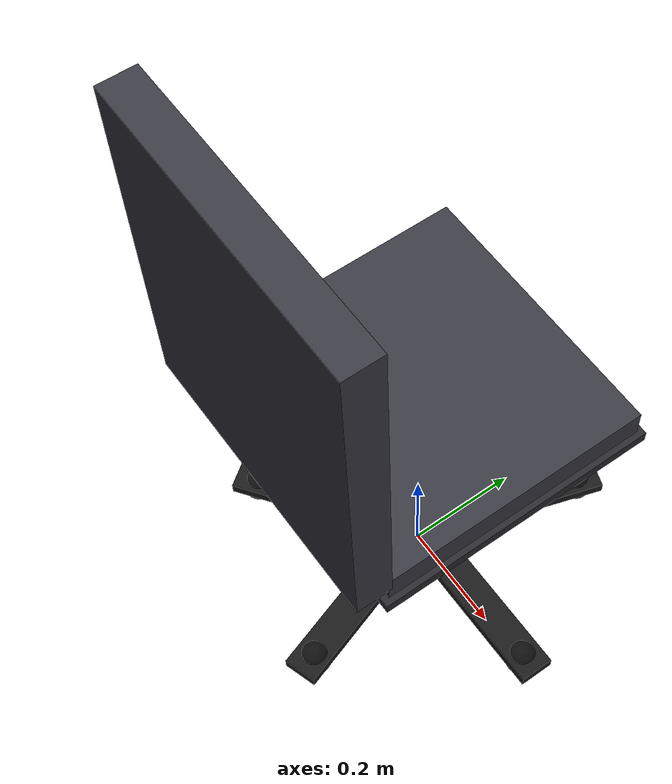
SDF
<?xml version="1.0" ?>
<sdf version="1.6">
  <model name="office_chair_5wheels_no_arms">
    <static>false</static>

    <link name="chair">
      <gravity>true</gravity>
      <self_collide>false</self_collide>
      <kinematic>false</kinematic>

      <!-- caster collisions (low friction) -->
      <collision name="caster_col_0">
        <pose>0.30 0.0 0.03 0 0 0</pose>
        <geometry><sphere><radius>0.03</radius></sphere></geometry>
        <surface><friction><ode><mu>0.05</mu><mu2>0.05</mu2></ode></friction></surface>
      </collision>
      <collision name="caster_col_72">
        <pose>0.0927 0.2853 0.03 0 0 0</pose>
        <geometry><sphere><radius>0.03</radius></sphere></geometry>
        <surface><friction><ode><mu>0.05</mu><mu2>0.05</mu2></ode></friction></surface>
      </collision>
      <collision name="caster_col_144">
        <pose>-0.2427 0.1763 0.03 0 0 0</pose>
        <geometry><sphere><radius>0.03</radius></sphere></geometry>
        <surface><friction><ode><mu>0.05</mu><mu2>0.05</mu2></ode></friction></surface>
      </collision>
      <collision name="caster_col_216">
        <pose>-0.2427 -0.1763 0.03 0 0 0</pose>
        <geometry><sphere><radius>0.03</radius></sphere></geometry>
        <surface><friction><ode><mu>0.05</mu><mu2>0.05</mu2></ode></friction></surface>
      </collision>
      <collision name="caster_col_288">
        <pose>0.0927 -0.2853 0.03 0 0 0</pose>
        <geometry><sphere><radius>0.03</radius></sphere></geometry>
        <surface><friction><ode><mu>0.05</mu><mu2>0.05</mu2></ode></friction></surface>
      </collision>

      <collision name="base_hub_col">
        <pose>0 0 0.06 0 0 0</pose>
        <geometry><cylinder><radius>0.07</radius><length>0.06</length></cylinder></geometry>
        <surface><friction><ode><mu>0.4</mu><mu2>0.4</mu2></ode></friction></surface>
      </collision>

      <collision name="post_col">
        <pose>0 0 0.27 0 0 0</pose>
        <geometry><cylinder><radius>0.03</radius><length>0.36</length></cylinder></geometry>
      </collision>

      <collision name="seat_col">
        <pose>0 0 0.49 0 0 0</pose>
        <geometry><box><size>0.50 0.48 0.08</size></box></geometry>
      </collision>

      <collision name="back_col">
        <pose>0 -0.26 0.83 0 0 0</pose>
        <geometry><box><size>0.50 0.06 0.60</size></box></geometry>
      </collision>

      <!-- ===== VISUALS (no side cylinders) ===== -->

      <!-- star legs -->
      <visual name="leg_0_vis">
        <pose>0.18 0.0 0.04 0 0 0</pose>
        <geometry><box><size>0.32 0.06 0.02</size></box></geometry>
        <material><ambient>0.06 0.06 0.06 1</ambient><diffuse>0.10 0.10 0.10 1</diffuse></material>
      </visual>
      <visual name="leg_72_vis">
        <pose>0.0558 0.1716 0.04 0 0 1.256637</pose>
        <geometry><box><size>0.32 0.06 0.02</size></box></geometry>
        <material><ambient>0.06 0.06 0.06 1</ambient><diffuse>0.10 0.10 0.10 1</diffuse></material>
      </visual>
      <visual name="leg_144_vis">
        <pose>-0.146 0.106 0.04 0 0 2.513274</pose>
        <geometry><box><size>0.32 0.06 0.02</size></box></geometry>
        <material><ambient>0.06 0.06 0.06 1</ambient><diffuse>0.10 0.10 0.10 1</diffuse></material>
      </visual>
      <visual name="leg_216_vis">
        <pose>-0.146 -0.106 0.04 0 0 3.769911</pose>
        <geometry><box><size>0.32 0.06 0.02</size></box></geometry>
        <material><ambient>0.06 0.06 0.06 1</ambient><diffuse>0.10 0.10 0.10 1</diffuse></material>
      </visual>
      <visual name="leg_288_vis">
        <pose>0.0558 -0.1716 0.04 0 0 5.026548</pose>
        <geometry><box><size>0.32 0.06 0.02</size></box></geometry>
        <material><ambient>0.06 0.06 0.06 1</ambient><diffuse>0.10 0.10 0.10 1</diffuse></material>
      </visual>

      <visual name="hub_cover_vis">
        <pose>0 0 0.06 0 0 0</pose>
        <geometry><cylinder><radius>0.08</radius><length>0.03</length></cylinder></geometry>
        <material><ambient>0.07 0.07 0.07 1</ambient><diffuse>0.12 0.12 0.12 1</diffuse></material>
      </visual>

      <!-- caster visuals -->
      <visual name="caster_0_vis">
        <pose>0.30 0.0 0.03 0 0 0</pose>
        <geometry><sphere><radius>0.03</radius></sphere></geometry>
        <material><ambient>0.03 0.03 0.03 1</ambient><diffuse>0.06 0.06 0.06 1</diffuse></material>
      </visual>
      <visual name="caster_72_vis">
        <pose>0.0927 0.2853 0.03 0 0 0</pose>
        <geometry><sphere><radius>0.03</radius></sphere></geometry>
        <material><ambient>0.03 0.03 0.03 1</ambient><diffuse>0.06 0.06 0.06 1</diffuse></material>
      </visual>
      <visual name="caster_144_vis">
        <pose>-0.2427 0.1763 0.03 0 0 0</pose>
        <geometry><sphere><radius>0.03</radius></sphere></geometry>
        <material><ambient>0.03 0.03 0.03 1</ambient><diffuse>0.06 0.06 0.06 1</diffuse></material>
      </visual>
      <visual name="caster_216_vis">
        <pose>-0.2427 -0.1763 0.03 0 0 0</pose>
        <geometry><sphere><radius>0.03</radius></sphere></geometry>
        <material><ambient>0.03 0.03 0.03 1</ambient><diffuse>0.06 0.06 0.06 1</diffuse></material>
      </visual>
      <visual name="caster_288_vis">
        <pose>0.0927 -0.2853 0.03 0 0 0</pose>
        <geometry><sphere><radius>0.03</radius></sphere></geometry>
        <material><ambient>0.03 0.03 0.03 1</ambient><diffuse>0.06 0.06 0.06 1</diffuse></material>
      </visual>

      <!-- post and seat -->
      <visual name="post_vis">
        <pose>0 0 0.27 0 0 0</pose>
        <geometry><cylinder><radius>0.03</radius><length>0.36</length></cylinder></geometry>
        <material><ambient>0.5 0.5 0.55 1</ambient><diffuse>0.75 0.75 0.80 1</diffuse><specular>0.8 0.8 0.9 1</specular></material>
      </visual>
      <visual name="seat_plate_vis">
        <pose>0 0 0.45 0 0 0</pose>
        <geometry><cylinder><radius>0.22</radius><length>0.015</length></cylinder></geometry>
        <material><ambient>0.07 0.07 0.07 1</ambient><diffuse>0.12 0.12 0.12 1</diffuse></material>
      </visual>
      <visual name="seat_base_vis">
        <pose>0 0 0.47 0 0 0</pose>
        <geometry><box><size>0.50 0.48 0.02</size></box></geometry>
        <material><ambient>0.08 0.08 0.09 1</ambient><diffuse>0.16 0.16 0.18 1</diffuse></material>
      </visual>
      <visual name="seat_cushion_vis">
        <pose>0 0 0.50 0 0 0</pose>
        <geometry><box><size>0.48 0.46 0.06</size></box></geometry>
        <material><ambient>0.10 0.10 0.12 1</ambient><diffuse>0.22 0.22 0.26 1</diffuse></material>
      </visual>

      <!-- backrest (no cylindrical side pieces) -->
      <visual name="back_pad_vis">
        <pose>0 -0.26 0.83 0 0 0</pose>
        <geometry><box><size>0.50 0.06 0.60</size></box></geometry>
        <material><ambient>0.10 0.10 0.12 1</ambient><diffuse>0.22 0.22 0.26 1</diffuse></material>
      </visual>
      <visual name="lumbar_vis">
        <pose>0 -0.235 0.65 0 0 0</pose>
        <geometry><box><size>0.40 0.02 0.18</size></box></geometry>
        <material><ambient>0.12 0.12 0.14 1</ambient><diffuse>0.24 0.24 0.28 1</diffuse></material>
      </visual>

    </link>
  </model>
</sdf>
